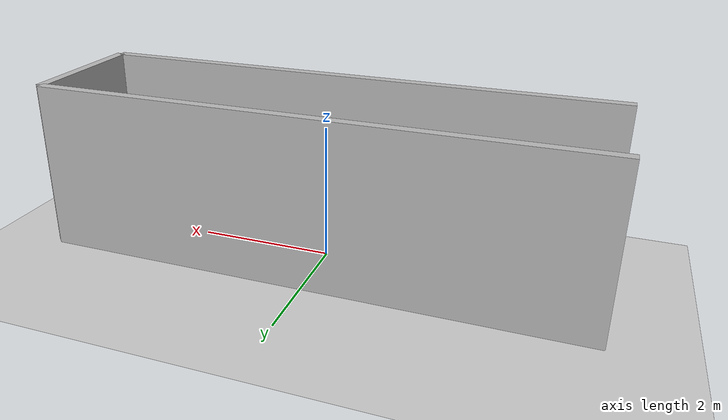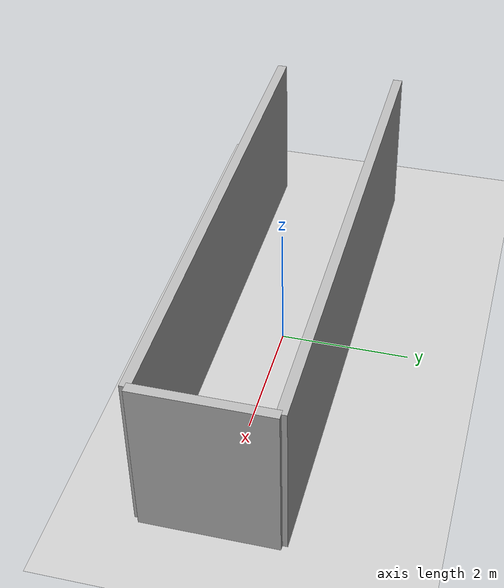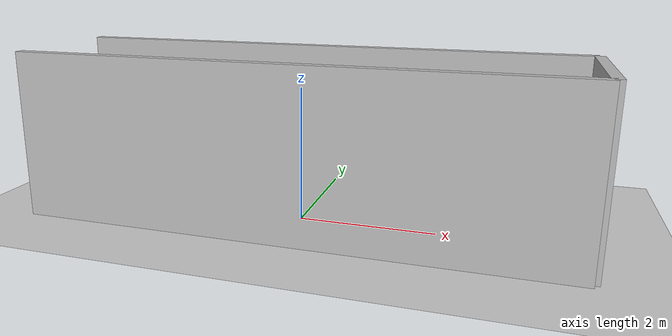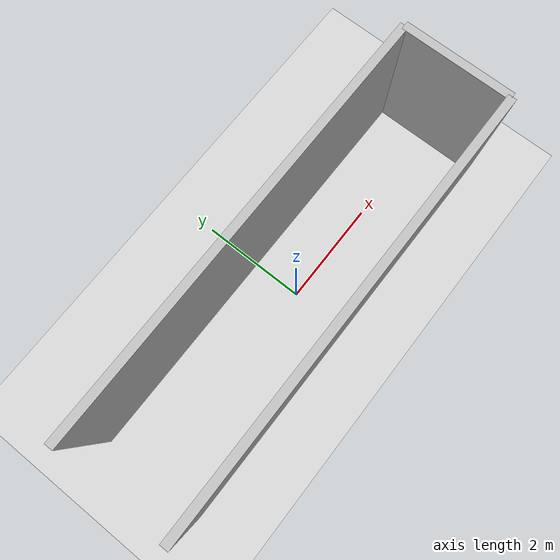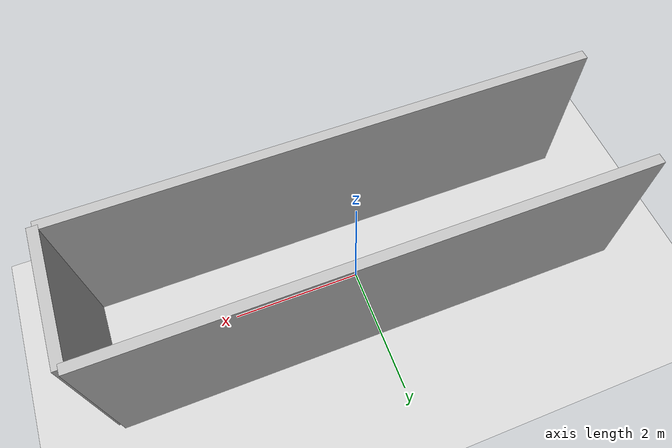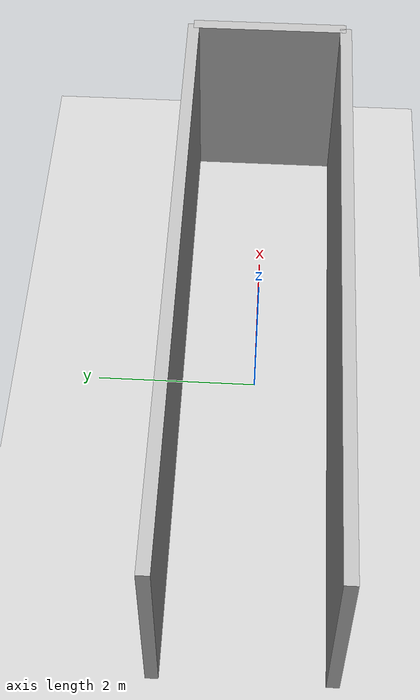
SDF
<?xml version="1.0" encoding="UTF-8"?>
<sdf version="1.9">
  <world name="obstacle_suite_dead_end">
    <physics type="ode">
      <max_step_size>0.004</max_step_size>
      <real_time_factor>1.0</real_time_factor>
      <real_time_update_rate>250</real_time_update_rate>
    </physics>
    <gravity>0 0 -9.8</gravity>
    <magnetic_field>6e-06 2.3e-05 -4.2e-05</magnetic_field>
    <atmosphere type="adiabatic"/>
    <scene>
      <grid>false</grid>
      <ambient>1.0 1.0 1.0 1</ambient>
      <background>0.7 0.7 0.7 1</background>
      <shadows>true</shadows>
    </scene>
    <model name="ground_plane">
      <static>true</static>
      <link name="link">
        <collision name="collision">
          <geometry><plane><normal>0 0 1</normal><size>1 1</size></plane></geometry>
        </collision>
        <visual name="visual">
          <geometry><plane><normal>0 0 1</normal><size>500 500</size></plane></geometry>
          <material>
            <ambient>0.8 0.8 0.8 1</ambient>
            <diffuse>0.8 0.8 0.8 1</diffuse>
            <specular>0.8 0.8 0.8 1</specular>
          </material>
        </visual>
      </link>
    </model>
    <model name="aeris_box_0">
      <static>true</static>
      <pose>0.0 -1.0 1.25 0.0 0.0 0.0</pose>
      <link name="link">
        <collision name="collision">
          <geometry><box><size>8.0 0.15 2.5</size></box></geometry>
        </collision>
        <visual name="visual">
          <geometry><box><size>8.0 0.15 2.5</size></box></geometry>
        </visual>
      </link>
    </model>
    <model name="aeris_box_1">
      <static>true</static>
      <pose>0.0 1.0 1.25 0.0 0.0 0.0</pose>
      <link name="link">
        <collision name="collision">
          <geometry><box><size>8.0 0.15 2.5</size></box></geometry>
        </collision>
        <visual name="visual">
          <geometry><box><size>8.0 0.15 2.5</size></box></geometry>
        </visual>
      </link>
    </model>
    <model name="aeris_box_2">
      <static>true</static>
      <pose>4.0 0.0 1.25 0.0 0.0 0.0</pose>
      <link name="link">
        <collision name="collision">
          <geometry><box><size>0.15 2.0 2.5</size></box></geometry>
        </collision>
        <visual name="visual">
          <geometry><box><size>0.15 2.0 2.5</size></box></geometry>
        </visual>
      </link>
    </model>
    <light name="sunUTC" type="directional">
      <pose>0 0 500 0 -0 0</pose>
      <cast_shadows>true</cast_shadows>
      <intensity>1</intensity>
      <direction>0.001 0.625 -0.78</direction>
      <diffuse>0.904 0.904 0.904 1</diffuse>
      <specular>0.271 0.271 0.271 1</specular>
      <attenuation>
        <range>2000</range>
        <linear>0</linear>
        <constant>1</constant>
        <quadratic>0</quadratic>
      </attenuation>
      <spot><inner_angle>0</inner_angle><outer_angle>0</outer_angle><falloff>0</falloff></spot>
    </light>
    <spherical_coordinates>
      <surface_model>EARTH_WGS84</surface_model>
      <world_frame_orientation>ENU</world_frame_orientation>
      <latitude_deg>47.397971057728974</latitude_deg>
      <longitude_deg>8.546163739800146</longitude_deg>
      <elevation>0</elevation>
    </spherical_coordinates>
  </world>
</sdf>
